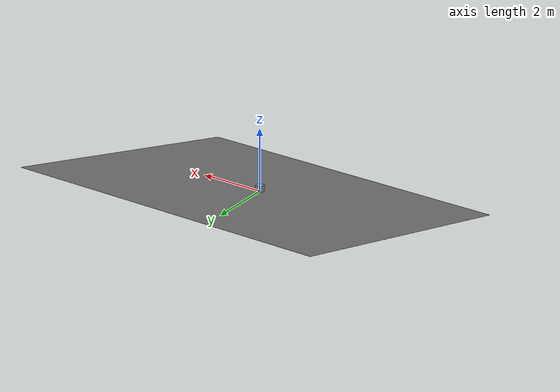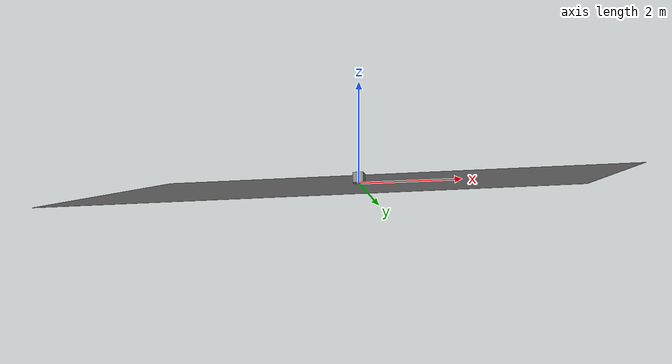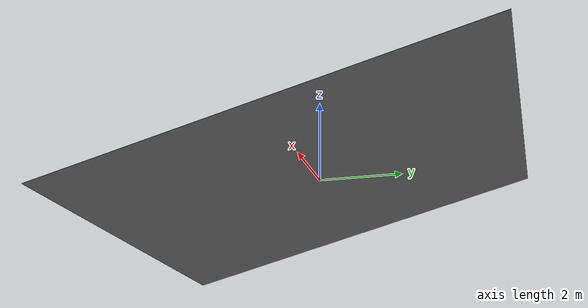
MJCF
<mujoco model="noslip_tilted">
            <option gravity="0 0 -9.81" timestep="0.002" solver="PGS" cone="elliptic"
                    iterations="100" noslip_iterations="50" noslip_tolerance="1e-12"/>
            <worldbody>
                <body pos="0 0 0.11">
                    <joint type="free"/>
                    <geom type="box" size="0.1 0.1 0.1" mass="1.0"
                          friction="0.5 0.5 0.005"/>
                </body>
                <geom type="plane" size="5 5 0.1"
                      euler="15 0 0" friction="0.5 0.5 0.005"/>
            </worldbody>
        </mujoco>
